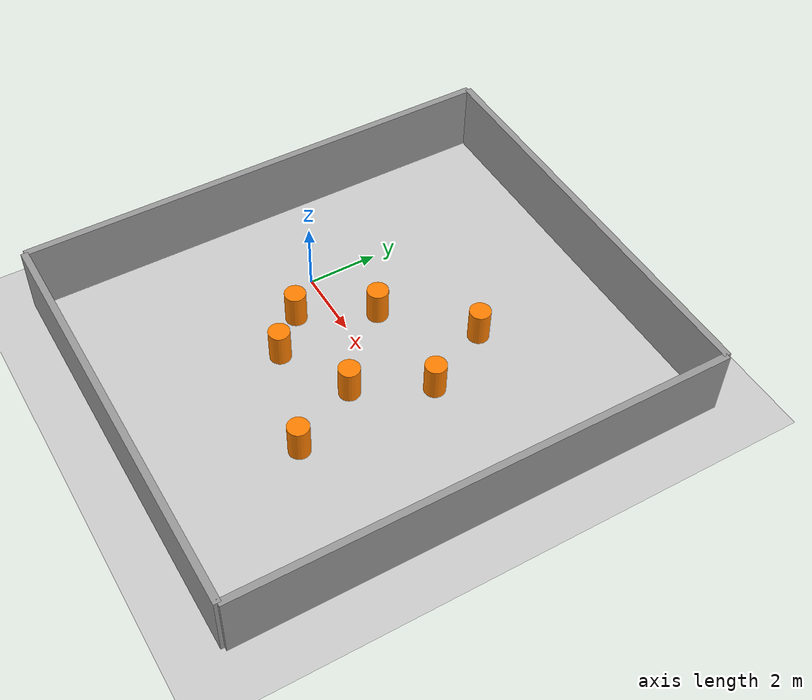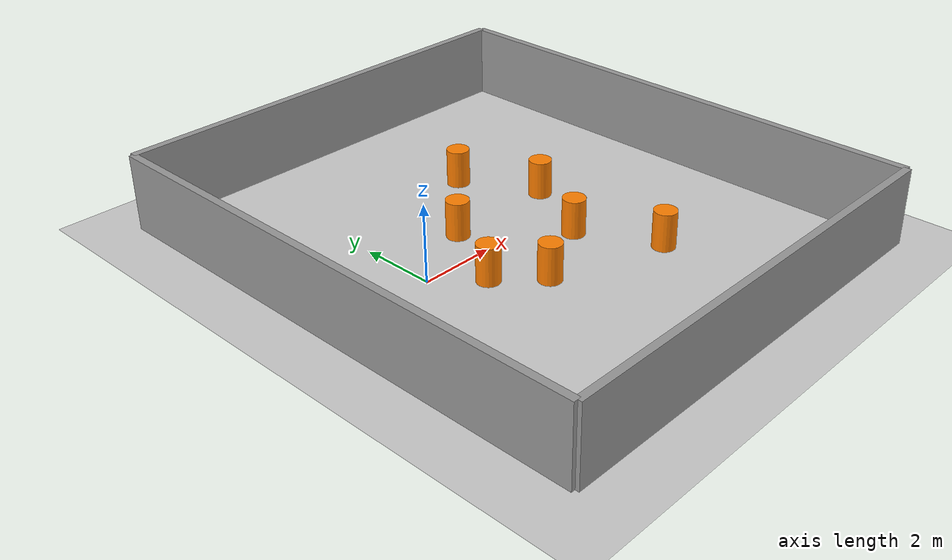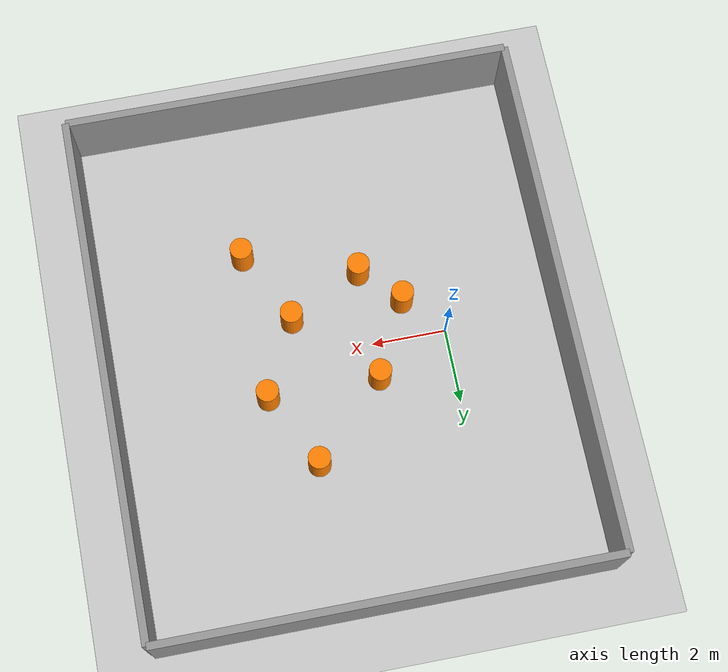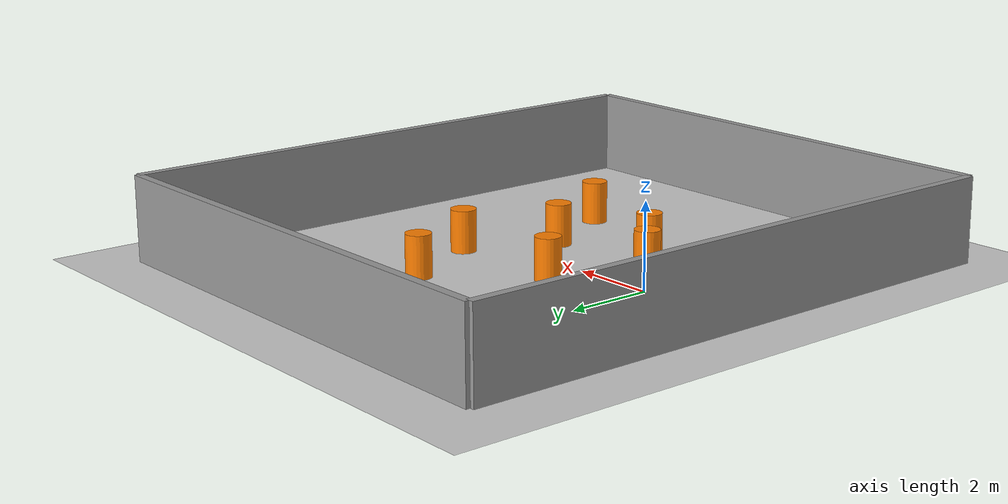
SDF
<?xml version="1.0" ?>
<sdf version='1.8'>
  <world name='obstacle_world'>

    <physics name='1ms' type='ignored'>
      <max_step_size>0.001</max_step_size>
      <real_time_factor>1</real_time_factor>
    </physics>

    <plugin
        filename="gz-sim-physics-system"
        name="gz::sim::systems::Physics">
    </plugin>
    <plugin
        filename="gz-sim-user-commands-system"
        name="gz::sim::systems::UserCommands">
    </plugin>
    <plugin
        filename="gz-sim-scene-broadcaster-system"
        name="gz::sim::systems::SceneBroadcaster">
    </plugin>
    <plugin
        filename="gz-sim-sensors-system"
        name="gz::sim::systems::Sensors">
        <render_engine>ogre2</render_engine>
    </plugin>
    <plugin
        filename="gz-sim-contact-system"
        name="gz::sim::systems::Contact">
    </plugin>

    <light name='sun' type='directional'>
      <pose>0 0 10 0 0 0</pose>
      <cast_shadows>true</cast_shadows>
      <intensity>1</intensity>
      <direction>-0.5 0.1 -0.9</direction>
      <diffuse>0.8 0.8 0.8 1</diffuse>
      <specular>0.2 0.2 0.2 1</specular>
      <attenuation>
        <range>1000</range>
        <linear>0.01</linear>
        <constant>0.9</constant>
        <quadratic>0.001</quadratic>
      </attenuation>
    </light>

    <model name='ground_plane'>
      <static>true</static>
      <link name='link'>
        <collision name='collision'>
          <geometry>
            <plane>
              <normal>0 0 1</normal>
              <size>100 100</size>
            </plane>
          </geometry>
        </collision>
        <visual name='visual'>
          <geometry>
            <plane>
              <normal>0 0 1</normal>
              <size>100 100</size>
            </plane>
          </geometry>
          <material>
            <ambient>0.8 0.8 0.8 1</ambient>
            <diffuse>0.8 0.8 0.8 1</diffuse>
            <specular>0.8 0.8 0.8 1</specular>
          </material>
        </visual>
      </link>
    </model>

    <!-- SİLİNDİR ENGELLER                              -->

    <model name='cylinder_0'>
      <static>true</static>
      <pose>2 1 0.5 0 0 0</pose>
      <link name='link'>
        <collision name='collision'>
          <geometry>
            <cylinder>
              <radius>0.3</radius>
              <length>1.0</length>
            </cylinder>
          </geometry>
        </collision>
        <visual name='visual'>
          <geometry>
            <cylinder>
              <radius>0.3</radius>
              <length>1.0</length>
            </cylinder>
          </geometry>
          <material>
            <ambient>1.0 0.5 0.0 1</ambient>
            <diffuse>1.0 0.5 0.0 1</diffuse>
          </material>
        </visual>
      </link>
    </model>

    <model name='cylinder_1'>
      <static>true</static>
      <pose>1 -1 0.5 0 0 0</pose>
      <link name='link'>
        <collision name='collision'>
          <geometry>
            <cylinder>
              <radius>0.3</radius>
              <length>1.0</length>
            </cylinder>
          </geometry>
        </collision>
        <visual name='visual'>
          <geometry>
            <cylinder>
              <radius>0.3</radius>
              <length>1.0</length>
            </cylinder>
          </geometry>
          <material>
            <ambient>1.0 0.5 0.0 1</ambient>
            <diffuse>1.0 0.5 0.0 1</diffuse>
          </material>
        </visual>
      </link>
    </model>

    <model name='cylinder_2'>
      <static>true</static>
      <pose>4 -1 0.5 0 0 0</pose>
      <link name='link'>
        <collision name='collision'>
          <geometry>
            <cylinder>
              <radius>0.3</radius>
              <length>1.0</length>
            </cylinder>
          </geometry>
        </collision>
        <visual name='visual'>
          <geometry>
            <cylinder>
              <radius>0.3</radius>
              <length>1.0</length>
            </cylinder>
          </geometry>
          <material>
            <ambient>1.0 0.5 0.0 1</ambient>
            <diffuse>1.0 0.5 0.0 1</diffuse>
          </material>
        </visual>
      </link>
    </model>

    <model name='cylinder_3'>
      <static>true</static>
      <pose>5 -3 0.5 0 0 0</pose>
      <link name='link'>
        <collision name='collision'>
          <geometry>
            <cylinder>
              <radius>0.3</radius>
              <length>1.0</length>
            </cylinder>
          </geometry>
        </collision>
        <visual name='visual'>
          <geometry>
            <cylinder>
              <radius>0.3</radius>
              <length>1.0</length>
            </cylinder>
          </geometry>
          <material>
            <ambient>1.0 0.5 0.0 1</ambient>
            <diffuse>1.0 0.5 0.0 1</diffuse>
          </material>
        </visual>
      </link>
    </model>

    <model name='cylinder_4'>
      <static>true</static>
      <pose>2 -2 0.5 0 0 0</pose>
      <link name='link'>
        <collision name='collision'>
          <geometry>
            <cylinder>
              <radius>0.3</radius>
              <length>1.0</length>
            </cylinder>
          </geometry>
        </collision>
        <visual name='visual'>
          <geometry>
            <cylinder>
              <radius>0.3</radius>
              <length>1.0</length>
            </cylinder>
          </geometry>
          <material>
            <ambient>1.0 0.5 0.0 1</ambient>
            <diffuse>1.0 0.5 0.0 1</diffuse>
          </material>
        </visual>
      </link>
    </model>

    <model name='cylinder_5'>
      <static>true</static>
      <pose>4 3 0.5 0 0 0</pose>
      <link name='link'>
        <collision name='collision'>
          <geometry>
            <cylinder>
              <radius>0.3</radius>
              <length>1.0</length>
            </cylinder>
          </geometry>
        </collision>
        <visual name='visual'>
          <geometry>
            <cylinder>
              <radius>0.3</radius>
              <length>1.0</length>
            </cylinder>
          </geometry>
          <material>
            <ambient>1.0 0.5 0.0 1</ambient>
            <diffuse>1.0 0.5 0.0 1</diffuse>
          </material>
        </visual>
      </link>
    </model>

    <model name='cylinder_6'>
      <static>true</static>
      <pose>5 1 0.5 0 0 0</pose>
      <link name='link'>
        <collision name='collision'>
          <geometry>
            <cylinder>
              <radius>0.3</radius>
              <length>1.0</length>
            </cylinder>
          </geometry>
        </collision>
        <visual name='visual'>
          <geometry>
            <cylinder>
              <radius>0.3</radius>
              <length>1.0</length>
            </cylinder>
          </geometry>
          <material>
            <ambient>1.0 0.5 0.0 1</ambient>
            <diffuse>1.0 0.5 0.0 1</diffuse>
          </material>
        </visual>
      </link>
    </model>

    <!-- DUVARLAR - Kapalı Oda (12m x 14m)              -->
    <!-- Merkez: (3, 0) | X: -3 to 9 | Y: -7 to 7       -->

    <model name='wall_north'>
      <static>true</static>
      <pose>3 7 1 0 0 0</pose>
      <link name='link'>
        <collision name='collision'>
          <geometry>
            <box><size>12 0.2 2</size></box>
          </geometry>
        </collision>
        <visual name='visual'>
          <geometry>
            <box><size>12 0.2 2</size></box>
          </geometry>
          <material>
            <ambient>0.6 0.6 0.6 1</ambient>
            <diffuse>0.6 0.6 0.6 1</diffuse>
          </material>
        </visual>
      </link>
    </model>

    <model name='wall_south'>
      <static>true</static>
      <pose>3 -7 1 0 0 0</pose>
      <link name='link'>
        <collision name='collision'>
          <geometry>
            <box><size>12 0.2 2</size></box>
          </geometry>
        </collision>
        <visual name='visual'>
          <geometry>
            <box><size>12 0.2 2</size></box>
          </geometry>
          <material>
            <ambient>0.6 0.6 0.6 1</ambient>
            <diffuse>0.6 0.6 0.6 1</diffuse>
          </material>
        </visual>
      </link>
    </model>

    <model name='wall_east'>
      <static>true</static>
      <pose>9 0 1 0 0 1.5708</pose>
      <link name='link'>
        <collision name='collision'>
          <geometry>
            <box><size>14 0.2 2</size></box>
          </geometry>
        </collision>
        <visual name='visual'>
          <geometry>
            <box><size>14 0.2 2</size></box>
          </geometry>
          <material>
            <ambient>0.6 0.6 0.6 1</ambient>
            <diffuse>0.6 0.6 0.6 1</diffuse>
          </material>
        </visual>
      </link>
    </model>

    <model name='wall_west'>
      <static>true</static>
      <pose>-3 0 1 0 0 1.5708</pose>
      <link name='link'>
        <collision name='collision'>
          <geometry>
            <box><size>14 0.2 2</size></box>
          </geometry>
        </collision>
        <visual name='visual'>
          <geometry>
            <box><size>14 0.2 2</size></box>
          </geometry>
          <material>
            <ambient>0.6 0.6 0.6 1</ambient>
            <diffuse>0.6 0.6 0.6 1</diffuse>
          </material>
        </visual>
      </link>
    </model>

  </world>
</sdf>
